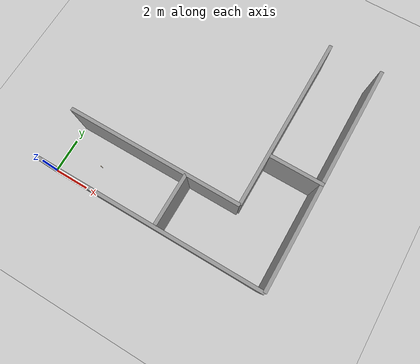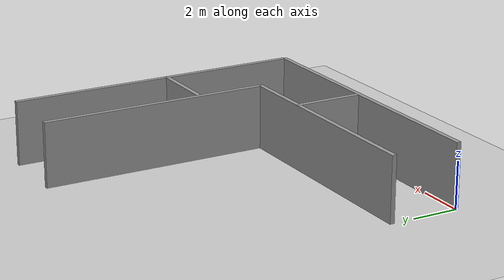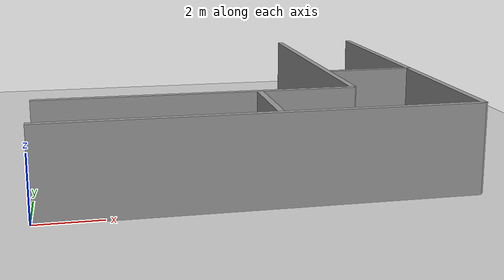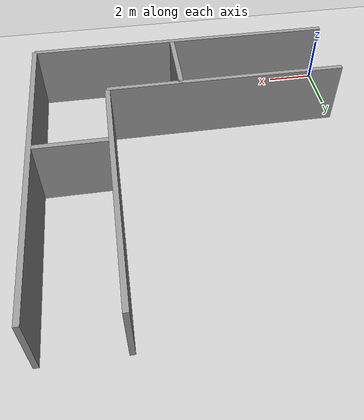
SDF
<sdf version="1.6">
 <world name="default">
  <physics name="default_physics" default="0" type="ode">
   <max_step_size>0.001</max_step_size>
   <real_time_factor>1</real_time_factor>
   <real_time_update_rate>0</real_time_update_rate>
  </physics>
  <model name="ground_plane">
   <static>1</static>
   <link name="link">
    <collision name="collision">
     <geometry><plane><normal>0 0 1</normal><size>100 100</size></plane></geometry>
     <surface><friction><ode><mu>100</mu><mu2>50</mu2></ode></friction></surface>
    </collision>
    <visual name="visual">
     <cast_shadows>0</cast_shadows>
     <geometry><plane><normal>0 0 1</normal><size>100 100</size></plane></geometry>
     <material>
      <script><uri>file://media/materials/scripts/gazebo.material</uri><name>Gazebo/Grey</name></script>
     </material>
    </visual>
   </link>
  </model>
  <light name="sun" type="directional">
   <pose>0 0 10 0 -0 0</pose>
   <diffuse>0.8 0.8 0.8 1</diffuse>
   <specular>0.1 0.1 0.1 1</specular>
   <attenuation>
    <range>1000</range>
    <constant>0.9</constant>
    <linear>0.01</linear>
    <quadratic>0.001</quadratic>
   </attenuation>
   <direction>-0.5 0.5 -1</direction>
  </light>
  <model name="grey_wall_1">
   <pose>6.92387 0.084853 0 0 -0 0</pose>
   <static>1</static>
   <link name="link">
    <pose>0 1.5 1.4 0 -0 1.57</pose>
    <collision name="collision"><geometry><box><size>3 0.2 2.8</size></box></geometry></collision>
    <visual name="visual">
     <cast_shadows>0</cast_shadows>
     <geometry><box><size>3 0.2 2.8</size></box></geometry>
     <material>
      <script>
       <uri>model://grey_wall/materials/scripts</uri>
       <uri>model://grey_wall/materials/textures</uri>
       <name>vrc/grey_wall</name>
      </script>
     </material>
    </visual>
   </link>
  </model>
  <model name="grey_wall_2">
   <static>1</static>
   <link name="link">
    <pose>5 3 1.4 0 -0 0</pose>
    <collision name="collision"><geometry><box><size>10 0.2 2.8</size></box></geometry></collision>
    <visual name="visual">
     <cast_shadows>0</cast_shadows>
     <geometry><box><size>10 0.2 2.8</size></box></geometry>
     <material>
      <script>
       <uri>model://grey_wall/materials/scripts</uri>
       <uri>model://grey_wall/materials/textures</uri>
       <name>vrc/grey_wall</name>
      </script>
     </material>
    </visual>
   </link>
  </model>
  <model name="grey_wall_3">
   <static>1</static>
   <link name="link">
    <pose>6.5 0 1.4 0 -0 0</pose>
    <collision name="collision"><geometry><box><size>13 0.2 2.8</size></box></geometry></collision>
    <visual name="visual">
     <cast_shadows>0</cast_shadows>
     <geometry><box><size>13 0.2 2.8</size></box></geometry>
     <material>
      <script>
       <uri>model://grey_wall/materials/scripts</uri>
       <uri>model://grey_wall/materials/textures</uri>
       <name>vrc/grey_wall</name>
      </script>
     </material>
    </visual>
   </link>
  </model>
  <model name="grey_wall_4">
   <pose>-0.021312 0.031652 0 0 -0 0</pose>
   <static>1</static>
   <link name="link">
    <pose>10 8 1.4 0 -0 1.57</pose>
    <collision name="collision"><geometry><box><size>10 0.2 2.8</size></box></geometry></collision>
    <visual name="visual">
     <cast_shadows>0</cast_shadows>
     <geometry><box><size>10 0.2 2.8</size></box></geometry>
     <material>
      <script>
       <uri>model://grey_wall/materials/scripts</uri>
       <uri>model://grey_wall/materials/textures</uri>
       <name>vrc/grey_wall</name>
      </script>
     </material>
    </visual>
   </link>
  </model>
  <model name="grey_wall_5">
   <pose>0.084875 -7.04336 0 0 -0 0</pose>
   <static>1</static>
   <link name="link">
    <pose>11.5 13 1.4 0 -0 0</pose>
    <collision name="collision"><geometry><box><size>3 0.2 2.8</size></box></geometry></collision>
    <visual name="visual">
     <cast_shadows>0</cast_shadows>
     <geometry><box><size>3 0.2 2.8</size></box></geometry>
     <material>
      <script>
       <uri>model://grey_wall/materials/scripts</uri>
       <uri>model://grey_wall/materials/textures</uri>
       <name>vrc/grey_wall</name>
      </script>
     </material>
    </visual>
   </link>
  </model>
  <model name="grey_wall_6">
   <static>1</static>
   <link name="link">
    <pose>13 6.5 1.4 0 -0 1.57</pose>
    <collision name="collision"><geometry><box><size>13 0.2 2.8</size></box></geometry></collision>
    <visual name="visual">
     <cast_shadows>0</cast_shadows>
     <geometry><box><size>13 0.2 2.8</size></box></geometry>
     <material>
      <script>
       <uri>model://grey_wall/materials/scripts</uri>
       <uri>model://grey_wall/materials/textures</uri>
       <name>vrc/grey_wall</name>
      </script>
     </material>
    </visual>
   </link>
  </model>
  <plugin name="ActorPosesPlugin" filename="libActorPosesPlugin.so"/>
  <gravity>0 0 -9.8</gravity>
  <magnetic_field>6e-06 2.3e-05 -4.2e-05</magnetic_field>
  <atmosphere type="adiabatic"/>
  <scene><ambient>0.4 0.4 0.4 1</ambient><background>0.7 0.7 0.7 1</background><shadows>1</shadows></scene>
  <spherical_coordinates>
   <surface_model>EARTH_WGS84</surface_model>
   <latitude_deg>0</latitude_deg>
   <longitude_deg>0</longitude_deg>
   <elevation>0</elevation>
   <heading_deg>0</heading_deg>
  </spherical_coordinates>
  <model name="TargetMark5">
   <link name="link_0">
    <inertial>
     <mass>1</mass>
     <inertia><ixx>0.145833</ixx><ixy>0</ixy><ixz>0</ixz><iyy>0.145833</iyy><iyz>0</iyz><izz>0.125</izz></inertia>
    </inertial>
    <gravity>0</gravity>
    <visual name="visual">
     <geometry><cylinder><radius>0.0105</radius><length>1</length></cylinder></geometry>
     <material>
      <lighting>1</lighting>
      <script><uri>file://media/materials/scripts/gazebo.material</uri><name>Gazebo/Grey</name></script>
      <shader type="pixel"><normal_map>__default__</normal_map></shader>
      <ambient>1 0.6 0 1</ambient>
      <diffuse>1 0.6 0 1</diffuse>
      <specular>1 0.6 0 1</specular>
      <emissive>1 0.6 0 1</emissive>
     </material>
     <transparency>0.6</transparency>
    </visual>
    <collision name="collision">
     <geometry><cylinder><radius>1e-06</radius><length>0.01</length></cylinder></geometry>
     <surface>
      <friction>
       <ode><mu>1</mu><mu2>1</mu2><fdir1>0 0 0</fdir1><slip1>0</slip1><slip2>0</slip2></ode>
       <torsional>
        <coefficient>1</coefficient>
        <patch_radius>0</patch_radius>
        <surface_radius>0</surface_radius>
        <use_patch_radius>1</use_patch_radius>
        <ode><slip>0</slip></ode>
       </torsional>
      </friction>
      <bounce><restitution_coefficient>0</restitution_coefficient><threshold>1e+06</threshold></bounce>
      <contact>
       <collide_without_contact>0</collide_without_contact>
       <collide_without_contact_bitmask>1</collide_without_contact_bitmask>
       <collide_bitmask>1</collide_bitmask>
       <ode>
        <soft_cfm>0</soft_cfm>
        <soft_erp>0.2</soft_erp>
        <kp>1e+13</kp>
        <kd>1</kd>
        <max_vel>0.01</max_vel>
        <min_depth>0</min_depth>
       </ode>
       <bullet>
        <split_impulse>1</split_impulse>
        <split_impulse_penetration_threshold>-0.01</split_impulse_penetration_threshold>
        <soft_cfm>0</soft_cfm>
        <soft_erp>0.2</soft_erp>
        <kp>1e+13</kp>
        <kd>1</kd>
       </bullet>
      </contact>
     </surface>
    </collision>
   </link>
   <static>0</static>
   <pose>2.17595 1.41037 0 0 -0 0</pose>
  </model>
 </world>
</sdf>
